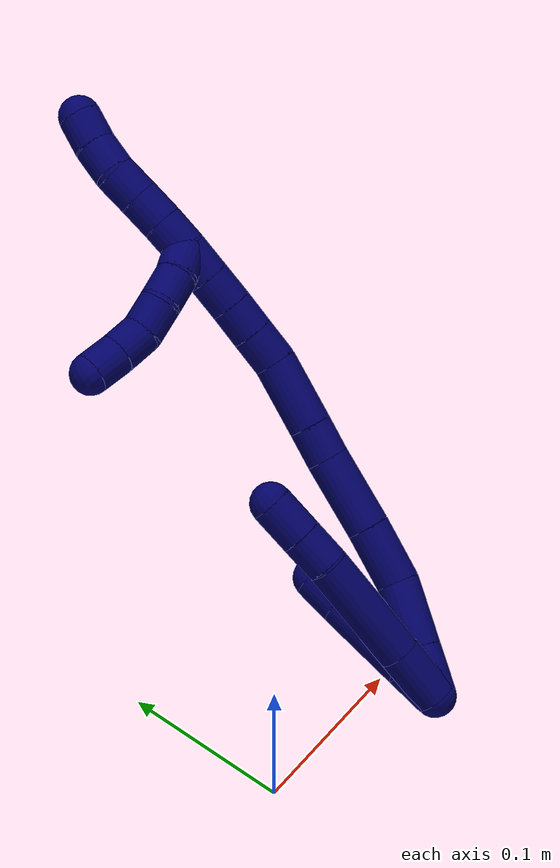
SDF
<sdf version="1.7">
 <world name="default">
  <model name="7">
   <static>0</static>
   <link name="7">
    <collision name="collision-cylinder-e_1_2_8">
     <pose>-0.002387 0.001254 0.017146 -0.073028 -0.137975 0.005048</pose>
     <geometry><cylinder><radius>0.0125</radius><length>0.034714</length></cylinder></geometry>
     <surface>
      <friction><ode><mu>1.16</mu><mu2>1.16</mu2><slip1>0</slip1><slip2>0</slip2></ode></friction>
      <contact><ode><kp>1e+06</kp><kd>1</kd><max_vel>0</max_vel><min_depth>0.001</min_depth></ode></contact>
     </surface>
    </collision>
    <visual name="visual-cylinder-e_1_2_8">
     <pose>-0.002387 0.001254 0.017146 -0.073028 -0.137975 0.005048</pose>
     <geometry><cylinder><radius>0.0125</radius><length>0.034714</length></cylinder></geometry>
     <material><ambient>0.003922 0 0.403922 1</ambient></material>
    </visual>
    <collision name="collision-cylinder-e_2_8_9">
     <pose>-0.009283 0.004989 0.067541 -0.074451 -0.1344 0.005013</pose>
     <geometry><cylinder><radius>0.0125</radius><length>0.067288</length></cylinder></geometry>
     <surface>
      <friction><ode><mu>1.16</mu><mu2>1.16</mu2><slip1>0</slip1><slip2>0</slip2></ode></friction>
      <contact><ode><kp>1e+06</kp><kd>1</kd><max_vel>0</max_vel><min_depth>0.001</min_depth></ode></contact>
     </surface>
    </collision>
    <visual name="visual-cylinder-e_2_8_9">
     <pose>-0.009283 0.004989 0.067541 -0.074451 -0.1344 0.005013</pose>
     <geometry><cylinder><radius>0.0125</radius><length>0.067288</length></cylinder></geometry>
     <material><ambient>0.003922 0 0.403922 1</ambient></material>
    </visual>
    <collision name="collision-cylinder-e_3_9_10">
     <pose>-0.013657 0.008024 0.112073 -0.049187 0.011846 -0.000291</pose>
     <geometry><cylinder><radius>0.0125</radius><length>0.022597</length></cylinder></geometry>
     <surface>
      <friction><ode><mu>1.16</mu><mu2>1.16</mu2><slip1>0</slip1><slip2>0</slip2></ode></friction>
      <contact><ode><kp>1e+06</kp><kd>1</kd><max_vel>0</max_vel><min_depth>0.001</min_depth></ode></contact>
     </surface>
    </collision>
    <visual name="visual-cylinder-e_3_9_10">
     <pose>-0.013657 0.008024 0.112073 -0.049187 0.011846 -0.000291</pose>
     <geometry><cylinder><radius>0.0125</radius><length>0.022597</length></cylinder></geometry>
     <material><ambient>0.003922 0 0.403922 1</ambient></material>
    </visual>
    <collision name="collision-cylinder-e_4_10_6">
     <pose>-0.01312 0.009096 0.136041 -0.040728 0.031742 -0.000647</pose>
     <geometry><cylinder><radius>0.0125</radius><length>0.025401</length></cylinder></geometry>
     <surface>
      <friction><ode><mu>1.16</mu><mu2>1.16</mu2><slip1>0</slip1><slip2>0</slip2></ode></friction>
      <contact><ode><kp>1e+06</kp><kd>1</kd><max_vel>0</max_vel><min_depth>0.001</min_depth></ode></contact>
     </surface>
    </collision>
    <visual name="visual-cylinder-e_4_10_6">
     <pose>-0.01312 0.009096 0.136041 -0.040728 0.031742 -0.000647</pose>
     <geometry><cylinder><radius>0.0125</radius><length>0.025401</length></cylinder></geometry>
     <material><ambient>0.003922 0 0.403922 1</ambient></material>
    </visual>
    <collision name="collision-cylinder-e_1_2_11">
     <pose>0.002103 0.00046 0.011821 -0.038897 0.175918 -0.003431</pose>
     <geometry><cylinder><radius>0.0125</radius><length>0.024031</length></cylinder></geometry>
     <surface>
      <friction><ode><mu>1.16</mu><mu2>1.16</mu2><slip1>0</slip1><slip2>0</slip2></ode></friction>
      <contact><ode><kp>1e+06</kp><kd>1</kd><max_vel>0</max_vel><min_depth>0.001</min_depth></ode></contact>
     </surface>
    </collision>
    <visual name="visual-cylinder-e_1_2_11">
     <pose>0.002103 0.00046 0.011821 -0.038897 0.175918 -0.003431</pose>
     <geometry><cylinder><radius>0.0125</radius><length>0.024031</length></cylinder></geometry>
     <material><ambient>0.003922 0 0.403922 1</ambient></material>
    </visual>
    <collision name="collision-cylinder-e_2_11_12">
     <pose>0.015516 -0.001705 0.047666 0.108834 0.437713 0.024229</pose>
     <geometry><cylinder><radius>0.0125</radius><length>0.053365</length></cylinder></geometry>
     <surface>
      <friction><ode><mu>1.16</mu><mu2>1.16</mu2><slip1>0</slip1><slip2>0</slip2></ode></friction>
      <contact><ode><kp>1e+06</kp><kd>1</kd><max_vel>0</max_vel><min_depth>0.001</min_depth></ode></contact>
     </surface>
    </collision>
    <visual name="visual-cylinder-e_2_11_12">
     <pose>0.015516 -0.001705 0.047666 0.108834 0.437713 0.024229</pose>
     <geometry><cylinder><radius>0.0125</radius><length>0.053365</length></cylinder></geometry>
     <material><ambient>0.003922 0 0.403922 1</ambient></material>
    </visual>
    <collision name="collision-cylinder-e_3_12_5">
     <pose>0.030513 -0.00516 0.082341 0.077779 0.332374 0.013053</pose>
     <geometry><cylinder><radius>0.0125</radius><length>0.022604</length></cylinder></geometry>
     <surface>
      <friction><ode><mu>1.16</mu><mu2>1.16</mu2><slip1>0</slip1><slip2>0</slip2></ode></friction>
      <contact><ode><kp>1e+06</kp><kd>1</kd><max_vel>0</max_vel><min_depth>0.001</min_depth></ode></contact>
     </surface>
    </collision>
    <visual name="visual-cylinder-e_3_12_5">
     <pose>0.030513 -0.00516 0.082341 0.077779 0.332374 0.013053</pose>
     <geometry><cylinder><radius>0.0125</radius><length>0.022604</length></cylinder></geometry>
     <material><ambient>0.003922 0 0.403922 1</ambient></material>
    </visual>
    <collision name="collision-cylinder-e_1_2_13">
     <pose>0.002162 -0.006931 0.0124 0.509681 0.151041 0.039417</pose>
     <geometry><cylinder><radius>0.0125</radius><length>0.028739</length></cylinder></geometry>
     <surface>
      <friction><ode><mu>1.16</mu><mu2>1.16</mu2><slip1>0</slip1><slip2>0</slip2></ode></friction>
      <contact><ode><kp>1e+06</kp><kd>1</kd><max_vel>0</max_vel><min_depth>0.001</min_depth></ode></contact>
     </surface>
    </collision>
    <visual name="visual-cylinder-e_1_2_13">
     <pose>0.002162 -0.006931 0.0124 0.509681 0.151041 0.039417</pose>
     <geometry><cylinder><radius>0.0125</radius><length>0.028739</length></cylinder></geometry>
     <material><ambient>0.003922 0 0.403922 1</ambient></material>
    </visual>
    <collision name="collision-cylinder-e_2_13_14">
     <pose>0.005908 -0.023123 0.043014 0.47041 0.077362 0.018548</pose>
     <geometry><cylinder><radius>0.0125</radius><length>0.040988</length></cylinder></geometry>
     <surface>
      <friction><ode><mu>1.16</mu><mu2>1.16</mu2><slip1>0</slip1><slip2>0</slip2></ode></friction>
      <contact><ode><kp>1e+06</kp><kd>1</kd><max_vel>0</max_vel><min_depth>0.001</min_depth></ode></contact>
     </surface>
    </collision>
    <visual name="visual-cylinder-e_2_13_14">
     <pose>0.005908 -0.023123 0.043014 0.47041 0.077362 0.018548</pose>
     <geometry><cylinder><radius>0.0125</radius><length>0.040988</length></cylinder></geometry>
     <material><ambient>0.003922 0 0.403922 1</ambient></material>
    </visual>
    <collision name="collision-cylinder-e_3_14_15">
     <pose>0.007237 -0.036168 0.079046 0.209258 -0.01402 -0.001472</pose>
     <geometry><cylinder><radius>0.0125</radius><length>0.036436</length></cylinder></geometry>
     <surface>
      <friction><ode><mu>1.16</mu><mu2>1.16</mu2><slip1>0</slip1><slip2>0</slip2></ode></friction>
      <contact><ode><kp>1e+06</kp><kd>1</kd><max_vel>0</max_vel><min_depth>0.001</min_depth></ode></contact>
     </surface>
    </collision>
    <visual name="visual-cylinder-e_3_14_15">
     <pose>0.007237 -0.036168 0.079046 0.209258 -0.01402 -0.001472</pose>
     <geometry><cylinder><radius>0.0125</radius><length>0.036436</length></cylinder></geometry>
     <material><ambient>0.003922 0 0.403922 1</ambient></material>
    </visual>
    <collision name="collision-cylinder-e_4_15_16">
     <pose>0.007502 -0.044282 0.119541 0.188646 0.02255 0.002133</pose>
     <geometry><cylinder><radius>0.0125</radius><length>0.046183</length></cylinder></geometry>
     <surface>
      <friction><ode><mu>1.16</mu><mu2>1.16</mu2><slip1>0</slip1><slip2>0</slip2></ode></friction>
      <contact><ode><kp>1e+06</kp><kd>1</kd><max_vel>0</max_vel><min_depth>0.001</min_depth></ode></contact>
     </surface>
    </collision>
    <visual name="visual-cylinder-e_4_15_16">
     <pose>0.007502 -0.044282 0.119541 0.188646 0.02255 0.002133</pose>
     <geometry><cylinder><radius>0.0125</radius><length>0.046183</length></cylinder></geometry>
     <material><ambient>0.003922 0 0.403922 1</ambient></material>
    </visual>
    <collision name="collision-cylinder-e_5_16_17">
     <pose>0.007697 -0.050789 0.152748 0.203917 -0.030302 -0.003101</pose>
     <geometry><cylinder><radius>0.0125</radius><length>0.021519</length></cylinder></geometry>
     <surface>
      <friction><ode><mu>1.16</mu><mu2>1.16</mu2><slip1>0</slip1><slip2>0</slip2></ode></friction>
      <contact><ode><kp>1e+06</kp><kd>1</kd><max_vel>0</max_vel><min_depth>0.001</min_depth></ode></contact>
     </surface>
    </collision>
    <visual name="visual-cylinder-e_5_16_17">
     <pose>0.007697 -0.050789 0.152748 0.203917 -0.030302 -0.003101</pose>
     <geometry><cylinder><radius>0.0125</radius><length>0.021519</length></cylinder></geometry>
     <material><ambient>0.003922 0 0.403922 1</ambient></material>
    </visual>
    <collision name="collision-cylinder-e_6_17_18">
     <pose>0.007286 -0.057311 0.183953 0.207112 -0.003995 -0.000415</pose>
     <geometry><cylinder><radius>0.0125</radius><length>0.042249</length></cylinder></geometry>
     <surface>
      <friction><ode><mu>1.16</mu><mu2>1.16</mu2><slip1>0</slip1><slip2>0</slip2></ode></friction>
      <contact><ode><kp>1e+06</kp><kd>1</kd><max_vel>0</max_vel><min_depth>0.001</min_depth></ode></contact>
     </surface>
    </collision>
    <visual name="visual-cylinder-e_6_17_18">
     <pose>0.007286 -0.057311 0.183953 0.207112 -0.003995 -0.000415</pose>
     <geometry><cylinder><radius>0.0125</radius><length>0.042249</length></cylinder></geometry>
     <material><ambient>0.003922 0 0.403922 1</ambient></material>
    </visual>
    <collision name="collision-cylinder-e_7_18_19">
     <pose>0.006706 -0.061635 0.215412 -0.001801 -0.045966 4.1e-05</pose>
     <geometry><cylinder><radius>0.0125</radius><length>0.021595</length></cylinder></geometry>
     <surface>
      <friction><ode><mu>1.16</mu><mu2>1.16</mu2><slip1>0</slip1><slip2>0</slip2></ode></friction>
      <contact><ode><kp>1e+06</kp><kd>1</kd><max_vel>0</max_vel><min_depth>0.001</min_depth></ode></contact>
     </surface>
    </collision>
    <visual name="visual-cylinder-e_7_18_19">
     <pose>0.006706 -0.061635 0.215412 -0.001801 -0.045966 4.1e-05</pose>
     <geometry><cylinder><radius>0.0125</radius><length>0.021595</length></cylinder></geometry>
     <material><ambient>0.003922 0 0.403922 1</ambient></material>
    </visual>
    <collision name="collision-cylinder-e_8_19_20">
     <pose>0.005749 -0.06169 0.23635 0.007369 -0.045304 -0.000167</pose>
     <geometry><cylinder><radius>0.0125</radius><length>0.020326</length></cylinder></geometry>
     <surface>
      <friction><ode><mu>1.16</mu><mu2>1.16</mu2><slip1>0</slip1><slip2>0</slip2></ode></friction>
      <contact><ode><kp>1e+06</kp><kd>1</kd><max_vel>0</max_vel><min_depth>0.001</min_depth></ode></contact>
     </surface>
    </collision>
    <visual name="visual-cylinder-e_8_19_20">
     <pose>0.005749 -0.06169 0.23635 0.007369 -0.045304 -0.000167</pose>
     <geometry><cylinder><radius>0.0125</radius><length>0.020326</length></cylinder></geometry>
     <material><ambient>0.003922 0 0.403922 1</ambient></material>
    </visual>
    <collision name="collision-cylinder-e_9_20_21">
     <pose>0.004898 -0.06161 0.256875 -0.015012 -0.037704 0.000283</pose>
     <geometry><cylinder><radius>0.0125</radius><length>0.020762</length></cylinder></geometry>
     <surface>
      <friction><ode><mu>1.16</mu><mu2>1.16</mu2><slip1>0</slip1><slip2>0</slip2></ode></friction>
      <contact><ode><kp>1e+06</kp><kd>1</kd><max_vel>0</max_vel><min_depth>0.001</min_depth></ode></contact>
     </surface>
    </collision>
    <visual name="visual-cylinder-e_9_20_21">
     <pose>0.004898 -0.06161 0.256875 -0.015012 -0.037704 0.000283</pose>
     <geometry><cylinder><radius>0.0125</radius><length>0.020762</length></cylinder></geometry>
     <material><ambient>0.003922 0 0.403922 1</ambient></material>
    </visual>
    <collision name="collision-cylinder-e_10_21_1">
     <pose>0.003922 -0.061172 0.277829 -0.026593 -0.055181 0.000734</pose>
     <geometry><cylinder><radius>0.0125</radius><length>0.021204</length></cylinder></geometry>
     <surface>
      <friction><ode><mu>1.16</mu><mu2>1.16</mu2><slip1>0</slip1><slip2>0</slip2></ode></friction>
      <contact><ode><kp>1e+06</kp><kd>1</kd><max_vel>0</max_vel><min_depth>0.001</min_depth></ode></contact>
     </surface>
    </collision>
    <visual name="visual-cylinder-e_10_21_1">
     <pose>0.003922 -0.061172 0.277829 -0.026593 -0.055181 0.000734</pose>
     <geometry><cylinder><radius>0.0125</radius><length>0.021204</length></cylinder></geometry>
     <material><ambient>0.003922 0 0.403922 1</ambient></material>
    </visual>
    <collision name="collision-cylinder-e_1_1_22">
     <pose>0.004755 -0.061289 0.298302 0.040243 0.142306 0.002869</pose>
     <geometry><cylinder><radius>0.0125</radius><length>0.02</length></cylinder></geometry>
     <surface>
      <friction><ode><mu>1.16</mu><mu2>1.16</mu2><slip1>0</slip1><slip2>0</slip2></ode></friction>
      <contact><ode><kp>1e+06</kp><kd>1</kd><max_vel>0</max_vel><min_depth>0.001</min_depth></ode></contact>
     </surface>
    </collision>
    <visual name="visual-cylinder-e_1_1_22">
     <pose>0.004755 -0.061289 0.298302 0.040243 0.142306 0.002869</pose>
     <geometry><cylinder><radius>0.0125</radius><length>0.02</length></cylinder></geometry>
     <material><ambient>0.003922 0 0.403922 1</ambient></material>
    </visual>
    <collision name="collision-cylinder-e_2_22_23">
     <pose>0.007736 -0.061763 0.31807 0.007656 0.15694 0.000602</pose>
     <geometry><cylinder><radius>0.0125</radius><length>0.02</length></cylinder></geometry>
     <surface>
      <friction><ode><mu>1.16</mu><mu2>1.16</mu2><slip1>0</slip1><slip2>0</slip2></ode></friction>
      <contact><ode><kp>1e+06</kp><kd>1</kd><max_vel>0</max_vel><min_depth>0.001</min_depth></ode></contact>
     </surface>
    </collision>
    <visual name="visual-cylinder-e_2_22_23">
     <pose>0.007736 -0.061763 0.31807 0.007656 0.15694 0.000602</pose>
     <geometry><cylinder><radius>0.0125</radius><length>0.02</length></cylinder></geometry>
     <material><ambient>0.003922 0 0.403922 1</ambient></material>
    </visual>
    <collision name="collision-cylinder-e_3_23_24">
     <pose>0.01081 -0.061736 0.337831 -0.010355 0.151672 -0.000787</pose>
     <geometry><cylinder><radius>0.0125</radius><length>0.02</length></cylinder></geometry>
     <surface>
      <friction><ode><mu>1.16</mu><mu2>1.16</mu2><slip1>0</slip1><slip2>0</slip2></ode></friction>
      <contact><ode><kp>1e+06</kp><kd>1</kd><max_vel>0</max_vel><min_depth>0.001</min_depth></ode></contact>
     </surface>
    </collision>
    <visual name="visual-cylinder-e_3_23_24">
     <pose>0.01081 -0.061736 0.337831 -0.010355 0.151672 -0.000787</pose>
     <geometry><cylinder><radius>0.0125</radius><length>0.02</length></cylinder></geometry>
     <material><ambient>0.003922 0 0.403922 1</ambient></material>
    </visual>
    <collision name="collision-cylinder-e_4_24_25">
     <pose>0.014934 -0.063756 0.357133 0.22168 0.264316 0.029588</pose>
     <geometry><cylinder><radius>0.0125</radius><length>0.02</length></cylinder></geometry>
     <surface>
      <friction><ode><mu>1.16</mu><mu2>1.16</mu2><slip1>0</slip1><slip2>0</slip2></ode></friction>
      <contact><ode><kp>1e+06</kp><kd>1</kd><max_vel>0</max_vel><min_depth>0.001</min_depth></ode></contact>
     </surface>
    </collision>
    <visual name="visual-cylinder-e_4_24_25">
     <pose>0.014934 -0.063756 0.357133 0.22168 0.264316 0.029588</pose>
     <geometry><cylinder><radius>0.0125</radius><length>0.02</length></cylinder></geometry>
     <material><ambient>0.003922 0 0.403922 1</ambient></material>
    </visual>
    <collision name="collision-cylinder-e_5_25_4">
     <pose>0.019242 -0.068915 0.375925 0.313224 0.170428 0.026975</pose>
     <geometry><cylinder><radius>0.0125</radius><length>0.02</length></cylinder></geometry>
     <surface>
      <friction><ode><mu>1.16</mu><mu2>1.16</mu2><slip1>0</slip1><slip2>0</slip2></ode></friction>
      <contact><ode><kp>1e+06</kp><kd>1</kd><max_vel>0</max_vel><min_depth>0.001</min_depth></ode></contact>
     </surface>
    </collision>
    <visual name="visual-cylinder-e_5_25_4">
     <pose>0.019242 -0.068915 0.375925 0.313224 0.170428 0.026975</pose>
     <geometry><cylinder><radius>0.0125</radius><length>0.02</length></cylinder></geometry>
     <material><ambient>0.003922 0 0.403922 1</ambient></material>
    </visual>
    <collision name="collision-cylinder-e_1_1_26">
     <pose>0.001621 -0.051903 0.284377 -1.99273 -0.172401 0.265456</pose>
     <geometry><cylinder><radius>0.0125</radius><length>0.02</length></cylinder></geometry>
     <surface>
      <friction><ode><mu>1.16</mu><mu2>1.16</mu2><slip1>0</slip1><slip2>0</slip2></ode></friction>
      <contact><ode><kp>1e+06</kp><kd>1</kd><max_vel>0</max_vel><min_depth>0.001</min_depth></ode></contact>
     </surface>
    </collision>
    <visual name="visual-cylinder-e_1_1_26">
     <pose>0.001621 -0.051903 0.284377 -1.99273 -0.172401 0.265456</pose>
     <geometry><cylinder><radius>0.0125</radius><length>0.02</length></cylinder></geometry>
     <material><ambient>0.003922 0 0.403922 1</ambient></material>
    </visual>
    <collision name="collision-cylinder-e_2_26_27">
     <pose>-7.5e-05 -0.0333 0.277594 -1.84915 0.001876 -0.002487</pose>
     <geometry><cylinder><radius>0.0125</radius><length>0.02</length></cylinder></geometry>
     <surface>
      <friction><ode><mu>1.16</mu><mu2>1.16</mu2><slip1>0</slip1><slip2>0</slip2></ode></friction>
      <contact><ode><kp>1e+06</kp><kd>1</kd><max_vel>0</max_vel><min_depth>0.001</min_depth></ode></contact>
     </surface>
    </collision>
    <visual name="visual-cylinder-e_2_26_27">
     <pose>-7.5e-05 -0.0333 0.277594 -1.84915 0.001876 -0.002487</pose>
     <geometry><cylinder><radius>0.0125</radius><length>0.02</length></cylinder></geometry>
     <material><ambient>0.003922 0 0.403922 1</ambient></material>
    </visual>
    <collision name="collision-cylinder-e_3_27_28">
     <pose>0.00229 -0.014441 0.271842 -1.88504 0.236895 -0.324736</pose>
     <geometry><cylinder><radius>0.0125</radius><length>0.02</length></cylinder></geometry>
     <surface>
      <friction><ode><mu>1.16</mu><mu2>1.16</mu2><slip1>0</slip1><slip2>0</slip2></ode></friction>
      <contact><ode><kp>1e+06</kp><kd>1</kd><max_vel>0</max_vel><min_depth>0.001</min_depth></ode></contact>
     </surface>
    </collision>
    <visual name="visual-cylinder-e_3_27_28">
     <pose>0.00229 -0.014441 0.271842 -1.88504 0.236895 -0.324736</pose>
     <geometry><cylinder><radius>0.0125</radius><length>0.02</length></cylinder></geometry>
     <material><ambient>0.003922 0 0.403922 1</ambient></material>
    </visual>
    <collision name="collision-cylinder-e_4_28_29">
     <pose>0.005926 0.004721 0.268847 -1.56983 0.12928 -0.129155</pose>
     <geometry><cylinder><radius>0.0125</radius><length>0.02</length></cylinder></geometry>
     <surface>
      <friction><ode><mu>1.16</mu><mu2>1.16</mu2><slip1>0</slip1><slip2>0</slip2></ode></friction>
      <contact><ode><kp>1e+06</kp><kd>1</kd><max_vel>0</max_vel><min_depth>0.001</min_depth></ode></contact>
     </surface>
    </collision>
    <visual name="visual-cylinder-e_4_28_29">
     <pose>0.005926 0.004721 0.268847 -1.56983 0.12928 -0.129155</pose>
     <geometry><cylinder><radius>0.0125</radius><length>0.02</length></cylinder></geometry>
     <material><ambient>0.003922 0 0.403922 1</ambient></material>
    </visual>
    <collision name="collision-cylinder-e_5_29_3">
     <pose>0.008276 0.024559 0.269513 -1.50473 0.106235 -0.09945</pose>
     <geometry><cylinder><radius>0.0125</radius><length>0.02</length></cylinder></geometry>
     <surface>
      <friction><ode><mu>1.16</mu><mu2>1.16</mu2><slip1>0</slip1><slip2>0</slip2></ode></friction>
      <contact><ode><kp>1e+06</kp><kd>1</kd><max_vel>0</max_vel><min_depth>0.001</min_depth></ode></contact>
     </surface>
    </collision>
    <visual name="visual-cylinder-e_5_29_3">
     <pose>0.008276 0.024559 0.269513 -1.50473 0.106235 -0.09945</pose>
     <geometry><cylinder><radius>0.0125</radius><length>0.02</length></cylinder></geometry>
     <material><ambient>0.003922 0 0.403922 1</ambient></material>
    </visual>
    <collision name="collision-sphere-3">
     <pose>0.009336 0.034481 0.27017 0 -0 0</pose>
     <geometry><sphere><radius>0.0125</radius></sphere></geometry>
     <surface>
      <friction><ode><mu>1.16</mu><mu2>1.16</mu2><slip1>0</slip1><slip2>0</slip2></ode></friction>
      <contact><ode><kp>1e+06</kp><kd>1</kd><max_vel>0</max_vel><min_depth>0.001</min_depth></ode></contact>
     </surface>
    </collision>
    <visual name="visual-sphere-3">
     <pose>0.009336 0.034481 0.27017 0 -0 0</pose>
     <geometry><sphere><radius>0.0125</radius></sphere></geometry>
     <material><ambient>0.003922 0 0.403922 1</ambient></material>
    </visual>
    <collision name="collision-sphere-29">
     <pose>0.007216 0.014637 0.268857 0 -0 0</pose>
     <geometry><sphere><radius>0.0125</radius></sphere></geometry>
     <surface>
      <friction><ode><mu>1.16</mu><mu2>1.16</mu2><slip1>0</slip1><slip2>0</slip2></ode></friction>
      <contact><ode><kp>1e+06</kp><kd>1</kd><max_vel>0</max_vel><min_depth>0.001</min_depth></ode></contact>
     </surface>
    </collision>
    <visual name="visual-sphere-29">
     <pose>0.007216 0.014637 0.268857 0 -0 0</pose>
     <geometry><sphere><radius>0.0125</radius></sphere></geometry>
     <material><ambient>0.003922 0 0.403922 1</ambient></material>
    </visual>
    <collision name="collision-sphere-28">
     <pose>0.004637 -0.005196 0.268837 0 -0 0</pose>
     <geometry><sphere><radius>0.0125</radius></sphere></geometry>
     <surface>
      <friction><ode><mu>1.16</mu><mu2>1.16</mu2><slip1>0</slip1><slip2>0</slip2></ode></friction>
      <contact><ode><kp>1e+06</kp><kd>1</kd><max_vel>0</max_vel><min_depth>0.001</min_depth></ode></contact>
     </surface>
    </collision>
    <visual name="visual-sphere-28">
     <pose>0.004637 -0.005196 0.268837 0 -0 0</pose>
     <geometry><sphere><radius>0.0125</radius></sphere></geometry>
     <material><ambient>0.003922 0 0.403922 1</ambient></material>
    </visual>
    <collision name="collision-sphere-27">
     <pose>-5.7e-05 -0.023685 0.274847 0 -0 0</pose>
     <geometry><sphere><radius>0.0125</radius></sphere></geometry>
     <surface>
      <friction><ode><mu>1.16</mu><mu2>1.16</mu2><slip1>0</slip1><slip2>0</slip2></ode></friction>
      <contact><ode><kp>1e+06</kp><kd>1</kd><max_vel>0</max_vel><min_depth>0.001</min_depth></ode></contact>
     </surface>
    </collision>
    <visual name="visual-sphere-27">
     <pose>-5.7e-05 -0.023685 0.274847 0 -0 0</pose>
     <geometry><sphere><radius>0.0125</radius></sphere></geometry>
     <material><ambient>0.003922 0 0.403922 1</ambient></material>
    </visual>
    <collision name="collision-sphere-26">
     <pose>-9.4e-05 -0.042915 0.280342 0 -0 0</pose>
     <geometry><sphere><radius>0.0125</radius></sphere></geometry>
     <surface>
      <friction><ode><mu>1.16</mu><mu2>1.16</mu2><slip1>0</slip1><slip2>0</slip2></ode></friction>
      <contact><ode><kp>1e+06</kp><kd>1</kd><max_vel>0</max_vel><min_depth>0.001</min_depth></ode></contact>
     </surface>
    </collision>
    <visual name="visual-sphere-26">
     <pose>-9.4e-05 -0.042915 0.280342 0 -0 0</pose>
     <geometry><sphere><radius>0.0125</radius></sphere></geometry>
     <material><ambient>0.003922 0 0.403922 1</ambient></material>
    </visual>
    <collision name="collision-sphere-4">
     <pose>0.020938 -0.071952 0.3853 0 -0 0</pose>
     <geometry><sphere><radius>0.0125</radius></sphere></geometry>
     <surface>
      <friction><ode><mu>1.16</mu><mu2>1.16</mu2><slip1>0</slip1><slip2>0</slip2></ode></friction>
      <contact><ode><kp>1e+06</kp><kd>1</kd><max_vel>0</max_vel><min_depth>0.001</min_depth></ode></contact>
     </surface>
    </collision>
    <visual name="visual-sphere-4">
     <pose>0.020938 -0.071952 0.3853 0 -0 0</pose>
     <geometry><sphere><radius>0.0125</radius></sphere></geometry>
     <material><ambient>0.003922 0 0.403922 1</ambient></material>
    </visual>
    <collision name="collision-sphere-25">
     <pose>0.017546 -0.065879 0.366549 0 -0 0</pose>
     <geometry><sphere><radius>0.0125</radius></sphere></geometry>
     <surface>
      <friction><ode><mu>1.16</mu><mu2>1.16</mu2><slip1>0</slip1><slip2>0</slip2></ode></friction>
      <contact><ode><kp>1e+06</kp><kd>1</kd><max_vel>0</max_vel><min_depth>0.001</min_depth></ode></contact>
     </surface>
    </collision>
    <visual name="visual-sphere-25">
     <pose>0.017546 -0.065879 0.366549 0 -0 0</pose>
     <geometry><sphere><radius>0.0125</radius></sphere></geometry>
     <material><ambient>0.003922 0 0.403922 1</ambient></material>
    </visual>
    <collision name="collision-sphere-24">
     <pose>0.012321 -0.061634 0.347716 0 -0 0</pose>
     <geometry><sphere><radius>0.0125</radius></sphere></geometry>
     <surface>
      <friction><ode><mu>1.16</mu><mu2>1.16</mu2><slip1>0</slip1><slip2>0</slip2></ode></friction>
      <contact><ode><kp>1e+06</kp><kd>1</kd><max_vel>0</max_vel><min_depth>0.001</min_depth></ode></contact>
     </surface>
    </collision>
    <visual name="visual-sphere-24">
     <pose>0.012321 -0.061634 0.347716 0 -0 0</pose>
     <geometry><sphere><radius>0.0125</radius></sphere></geometry>
     <material><ambient>0.003922 0 0.403922 1</ambient></material>
    </visual>
    <collision name="collision-sphere-23">
     <pose>0.009299 -0.061839 0.327947 0 -0 0</pose>
     <geometry><sphere><radius>0.0125</radius></sphere></geometry>
     <surface>
      <friction><ode><mu>1.16</mu><mu2>1.16</mu2><slip1>0</slip1><slip2>0</slip2></ode></friction>
      <contact><ode><kp>1e+06</kp><kd>1</kd><max_vel>0</max_vel><min_depth>0.001</min_depth></ode></contact>
     </surface>
    </collision>
    <visual name="visual-sphere-23">
     <pose>0.009299 -0.061839 0.327947 0 -0 0</pose>
     <geometry><sphere><radius>0.0125</radius></sphere></geometry>
     <material><ambient>0.003922 0 0.403922 1</ambient></material>
    </visual>
    <collision name="collision-sphere-22">
     <pose>0.006173 -0.061687 0.308193 0 -0 0</pose>
     <geometry><sphere><radius>0.0125</radius></sphere></geometry>
     <surface>
      <friction><ode><mu>1.16</mu><mu2>1.16</mu2><slip1>0</slip1><slip2>0</slip2></ode></friction>
      <contact><ode><kp>1e+06</kp><kd>1</kd><max_vel>0</max_vel><min_depth>0.001</min_depth></ode></contact>
     </surface>
    </collision>
    <visual name="visual-sphere-22">
     <pose>0.006173 -0.061687 0.308193 0 -0 0</pose>
     <geometry><sphere><radius>0.0125</radius></sphere></geometry>
     <material><ambient>0.003922 0 0.403922 1</ambient></material>
    </visual>
    <collision name="collision-sphere-1">
     <pose>0.003337 -0.060891 0.288411 0 -0 0</pose>
     <geometry><sphere><radius>0.0125</radius></sphere></geometry>
     <surface>
      <friction><ode><mu>1.16</mu><mu2>1.16</mu2><slip1>0</slip1><slip2>0</slip2></ode></friction>
      <contact><ode><kp>1e+06</kp><kd>1</kd><max_vel>0</max_vel><min_depth>0.001</min_depth></ode></contact>
     </surface>
    </collision>
    <visual name="visual-sphere-1">
     <pose>0.003337 -0.060891 0.288411 0 -0 0</pose>
     <geometry><sphere><radius>0.0125</radius></sphere></geometry>
     <material><ambient>0.003922 0 0.403922 1</ambient></material>
    </visual>
    <collision name="collision-sphere-21">
     <pose>0.004506 -0.061454 0.267247 0 -0 0</pose>
     <geometry><sphere><radius>0.0125</radius></sphere></geometry>
     <surface>
      <friction><ode><mu>1.16</mu><mu2>1.16</mu2><slip1>0</slip1><slip2>0</slip2></ode></friction>
      <contact><ode><kp>1e+06</kp><kd>1</kd><max_vel>0</max_vel><min_depth>0.001</min_depth></ode></contact>
     </surface>
    </collision>
    <visual name="visual-sphere-21">
     <pose>0.004506 -0.061454 0.267247 0 -0 0</pose>
     <geometry><sphere><radius>0.0125</radius></sphere></geometry>
     <material><ambient>0.003922 0 0.403922 1</ambient></material>
    </visual>
    <collision name="collision-sphere-11">
     <pose>0.004206 0.00092 0.023643 0 -0 0</pose>
     <geometry><sphere><radius>0.0125</radius></sphere></geometry>
     <surface>
      <friction><ode><mu>1.16</mu><mu2>1.16</mu2><slip1>0</slip1><slip2>0</slip2></ode></friction>
      <contact><ode><kp>1e+06</kp><kd>1</kd><max_vel>0</max_vel><min_depth>0.001</min_depth></ode></contact>
     </surface>
    </collision>
    <visual name="visual-sphere-11">
     <pose>0.004206 0.00092 0.023643 0 -0 0</pose>
     <geometry><sphere><radius>0.0125</radius></sphere></geometry>
     <material><ambient>0.003922 0 0.403922 1</ambient></material>
    </visual>
    <collision name="collision-sphere-6">
     <pose>-0.012717 0.009613 0.148724 0 -0 0</pose>
     <geometry><sphere><radius>0.0125</radius></sphere></geometry>
     <surface>
      <friction><ode><mu>1.16</mu><mu2>1.16</mu2><slip1>0</slip1><slip2>0</slip2></ode></friction>
      <contact><ode><kp>1e+06</kp><kd>1</kd><max_vel>0</max_vel><min_depth>0.001</min_depth></ode></contact>
     </surface>
    </collision>
    <visual name="visual-sphere-6">
     <pose>-0.012717 0.009613 0.148724 0 -0 0</pose>
     <geometry><sphere><radius>0.0125</radius></sphere></geometry>
     <material><ambient>0.003922 0 0.403922 1</ambient></material>
    </visual>
    <collision name="collision-sphere-10">
     <pose>-0.013523 0.00858 0.123357 0 -0 0</pose>
     <geometry><sphere><radius>0.0125</radius></sphere></geometry>
     <surface>
      <friction><ode><mu>1.16</mu><mu2>1.16</mu2><slip1>0</slip1><slip2>0</slip2></ode></friction>
      <contact><ode><kp>1e+06</kp><kd>1</kd><max_vel>0</max_vel><min_depth>0.001</min_depth></ode></contact>
     </surface>
    </collision>
    <visual name="visual-sphere-10">
     <pose>-0.013523 0.00858 0.123357 0 -0 0</pose>
     <geometry><sphere><radius>0.0125</radius></sphere></geometry>
     <material><ambient>0.003922 0 0.403922 1</ambient></material>
    </visual>
    <collision name="collision-sphere-9">
     <pose>-0.013791 0.007469 0.100789 0 -0 0</pose>
     <geometry><sphere><radius>0.0125</radius></sphere></geometry>
     <surface>
      <friction><ode><mu>1.16</mu><mu2>1.16</mu2><slip1>0</slip1><slip2>0</slip2></ode></friction>
      <contact><ode><kp>1e+06</kp><kd>1</kd><max_vel>0</max_vel><min_depth>0.001</min_depth></ode></contact>
     </surface>
    </collision>
    <visual name="visual-sphere-9">
     <pose>-0.013791 0.007469 0.100789 0 -0 0</pose>
     <geometry><sphere><radius>0.0125</radius></sphere></geometry>
     <material><ambient>0.003922 0 0.403922 1</ambient></material>
    </visual>
    <collision name="collision-sphere-2">
     <geometry><sphere><radius>0.0125</radius></sphere></geometry>
     <surface>
      <friction><ode><mu>1.16</mu><mu2>1.16</mu2><slip1>0</slip1><slip2>0</slip2></ode></friction>
      <contact><ode><kp>1e+06</kp><kd>1</kd><max_vel>0</max_vel><min_depth>0.001</min_depth></ode></contact>
     </surface>
    </collision>
    <visual name="visual-sphere-2">
     <geometry><sphere><radius>0.0125</radius></sphere></geometry>
     <material><ambient>0.003922 0 0.403922 1</ambient></material>
    </visual>
    <collision name="collision-sphere-19">
     <pose>0.006209 -0.061616 0.226198 0 -0 0</pose>
     <geometry><sphere><radius>0.0125</radius></sphere></geometry>
     <surface>
      <friction><ode><mu>1.16</mu><mu2>1.16</mu2><slip1>0</slip1><slip2>0</slip2></ode></friction>
      <contact><ode><kp>1e+06</kp><kd>1</kd><max_vel>0</max_vel><min_depth>0.001</min_depth></ode></contact>
     </surface>
    </collision>
    <visual name="visual-sphere-19">
     <pose>0.006209 -0.061616 0.226198 0 -0 0</pose>
     <geometry><sphere><radius>0.0125</radius></sphere></geometry>
     <material><ambient>0.003922 0 0.403922 1</ambient></material>
    </visual>
    <collision name="collision-sphere-8">
     <pose>-0.004775 0.002509 0.034293 0 -0 0</pose>
     <geometry><sphere><radius>0.0125</radius></sphere></geometry>
     <surface>
      <friction><ode><mu>1.16</mu><mu2>1.16</mu2><slip1>0</slip1><slip2>0</slip2></ode></friction>
      <contact><ode><kp>1e+06</kp><kd>1</kd><max_vel>0</max_vel><min_depth>0.001</min_depth></ode></contact>
     </surface>
    </collision>
    <visual name="visual-sphere-8">
     <pose>-0.004775 0.002509 0.034293 0 -0 0</pose>
     <geometry><sphere><radius>0.0125</radius></sphere></geometry>
     <material><ambient>0.003922 0 0.403922 1</ambient></material>
    </visual>
    <collision name="collision-sphere-12">
     <pose>0.026825 -0.00433 0.07169 0 -0 0</pose>
     <geometry><sphere><radius>0.0125</radius></sphere></geometry>
     <surface>
      <friction><ode><mu>1.16</mu><mu2>1.16</mu2><slip1>0</slip1><slip2>0</slip2></ode></friction>
      <contact><ode><kp>1e+06</kp><kd>1</kd><max_vel>0</max_vel><min_depth>0.001</min_depth></ode></contact>
     </surface>
    </collision>
    <visual name="visual-sphere-12">
     <pose>0.026825 -0.00433 0.07169 0 -0 0</pose>
     <geometry><sphere><radius>0.0125</radius></sphere></geometry>
     <material><ambient>0.003922 0 0.403922 1</ambient></material>
    </visual>
    <collision name="collision-sphere-5">
     <pose>0.034201 -0.00599 0.092992 0 -0 0</pose>
     <geometry><sphere><radius>0.0125</radius></sphere></geometry>
     <surface>
      <friction><ode><mu>1.16</mu><mu2>1.16</mu2><slip1>0</slip1><slip2>0</slip2></ode></friction>
      <contact><ode><kp>1e+06</kp><kd>1</kd><max_vel>0</max_vel><min_depth>0.001</min_depth></ode></contact>
     </surface>
    </collision>
    <visual name="visual-sphere-5">
     <pose>0.034201 -0.00599 0.092992 0 -0 0</pose>
     <geometry><sphere><radius>0.0125</radius></sphere></geometry>
     <material><ambient>0.003922 0 0.403922 1</ambient></material>
    </visual>
    <collision name="collision-sphere-13">
     <pose>0.004324 -0.013862 0.0248 0 -0 0</pose>
     <geometry><sphere><radius>0.0125</radius></sphere></geometry>
     <surface>
      <friction><ode><mu>1.16</mu><mu2>1.16</mu2><slip1>0</slip1><slip2>0</slip2></ode></friction>
      <contact><ode><kp>1e+06</kp><kd>1</kd><max_vel>0</max_vel><min_depth>0.001</min_depth></ode></contact>
     </surface>
    </collision>
    <visual name="visual-sphere-13">
     <pose>0.004324 -0.013862 0.0248 0 -0 0</pose>
     <geometry><sphere><radius>0.0125</radius></sphere></geometry>
     <material><ambient>0.003922 0 0.403922 1</ambient></material>
    </visual>
    <collision name="collision-sphere-14">
     <pose>0.007492 -0.032384 0.061227 0 -0 0</pose>
     <geometry><sphere><radius>0.0125</radius></sphere></geometry>
     <surface>
      <friction><ode><mu>1.16</mu><mu2>1.16</mu2><slip1>0</slip1><slip2>0</slip2></ode></friction>
      <contact><ode><kp>1e+06</kp><kd>1</kd><max_vel>0</max_vel><min_depth>0.001</min_depth></ode></contact>
     </surface>
    </collision>
    <visual name="visual-sphere-14">
     <pose>0.007492 -0.032384 0.061227 0 -0 0</pose>
     <geometry><sphere><radius>0.0125</radius></sphere></geometry>
     <material><ambient>0.003922 0 0.403922 1</ambient></material>
    </visual>
    <collision name="collision-sphere-15">
     <pose>0.006981 -0.039953 0.096865 0 -0 0</pose>
     <geometry><sphere><radius>0.0125</radius></sphere></geometry>
     <surface>
      <friction><ode><mu>1.16</mu><mu2>1.16</mu2><slip1>0</slip1><slip2>0</slip2></ode></friction>
      <contact><ode><kp>1e+06</kp><kd>1</kd><max_vel>0</max_vel><min_depth>0.001</min_depth></ode></contact>
     </surface>
    </collision>
    <visual name="visual-sphere-15">
     <pose>0.006981 -0.039953 0.096865 0 -0 0</pose>
     <geometry><sphere><radius>0.0125</radius></sphere></geometry>
     <material><ambient>0.003922 0 0.403922 1</ambient></material>
    </visual>
    <collision name="collision-sphere-16">
     <pose>0.008023 -0.048611 0.142217 0 -0 0</pose>
     <geometry><sphere><radius>0.0125</radius></sphere></geometry>
     <surface>
      <friction><ode><mu>1.16</mu><mu2>1.16</mu2><slip1>0</slip1><slip2>0</slip2></ode></friction>
      <contact><ode><kp>1e+06</kp><kd>1</kd><max_vel>0</max_vel><min_depth>0.001</min_depth></ode></contact>
     </surface>
    </collision>
    <visual name="visual-sphere-16">
     <pose>0.008023 -0.048611 0.142217 0 -0 0</pose>
     <geometry><sphere><radius>0.0125</radius></sphere></geometry>
     <material><ambient>0.003922 0 0.403922 1</ambient></material>
    </visual>
    <collision name="collision-sphere-17">
     <pose>0.007371 -0.052967 0.16328 0 -0 0</pose>
     <geometry><sphere><radius>0.0125</radius></sphere></geometry>
     <surface>
      <friction><ode><mu>1.16</mu><mu2>1.16</mu2><slip1>0</slip1><slip2>0</slip2></ode></friction>
      <contact><ode><kp>1e+06</kp><kd>1</kd><max_vel>0</max_vel><min_depth>0.001</min_depth></ode></contact>
     </surface>
    </collision>
    <visual name="visual-sphere-17">
     <pose>0.007371 -0.052967 0.16328 0 -0 0</pose>
     <geometry><sphere><radius>0.0125</radius></sphere></geometry>
     <material><ambient>0.003922 0 0.403922 1</ambient></material>
    </visual>
    <collision name="collision-sphere-18">
     <pose>0.007202 -0.061654 0.204626 0 -0 0</pose>
     <geometry><sphere><radius>0.0125</radius></sphere></geometry>
     <surface>
      <friction><ode><mu>1.16</mu><mu2>1.16</mu2><slip1>0</slip1><slip2>0</slip2></ode></friction>
      <contact><ode><kp>1e+06</kp><kd>1</kd><max_vel>0</max_vel><min_depth>0.001</min_depth></ode></contact>
     </surface>
    </collision>
    <visual name="visual-sphere-18">
     <pose>0.007202 -0.061654 0.204626 0 -0 0</pose>
     <geometry><sphere><radius>0.0125</radius></sphere></geometry>
     <material><ambient>0.003922 0 0.403922 1</ambient></material>
    </visual>
    <collision name="collision-sphere-20">
     <pose>0.005289 -0.061765 0.246502 0 -0 0</pose>
     <geometry><sphere><radius>0.0125</radius></sphere></geometry>
     <surface>
      <friction><ode><mu>1.16</mu><mu2>1.16</mu2><slip1>0</slip1><slip2>0</slip2></ode></friction>
      <contact><ode><kp>1e+06</kp><kd>1</kd><max_vel>0</max_vel><min_depth>0.001</min_depth></ode></contact>
     </surface>
    </collision>
    <visual name="visual-sphere-20">
     <pose>0.005289 -0.061765 0.246502 0 -0 0</pose>
     <geometry><sphere><radius>0.0125</radius></sphere></geometry>
     <material><ambient>0.003922 0 0.403922 1</ambient></material>
    </visual>
    <inertial>
     <pose>0.004751 -0.027129 0.15902 0 -0 0</pose>
     <mass>0.75</mass>
     <inertia>
      <ixx>0.000114</ixx>
      <ixy>0</ixy>
      <ixz>0</ixz>
      <iyy>0.000104</iyy>
      <iyz>0</iyz>
      <izz>4.5e-05</izz>
     </inertia>
    </inertial>
   </link>
   <pose>0.103501 -0.036505 0.011431 0.012001 0.979616 1.54409</pose>
  </model>
 </world>
</sdf>
